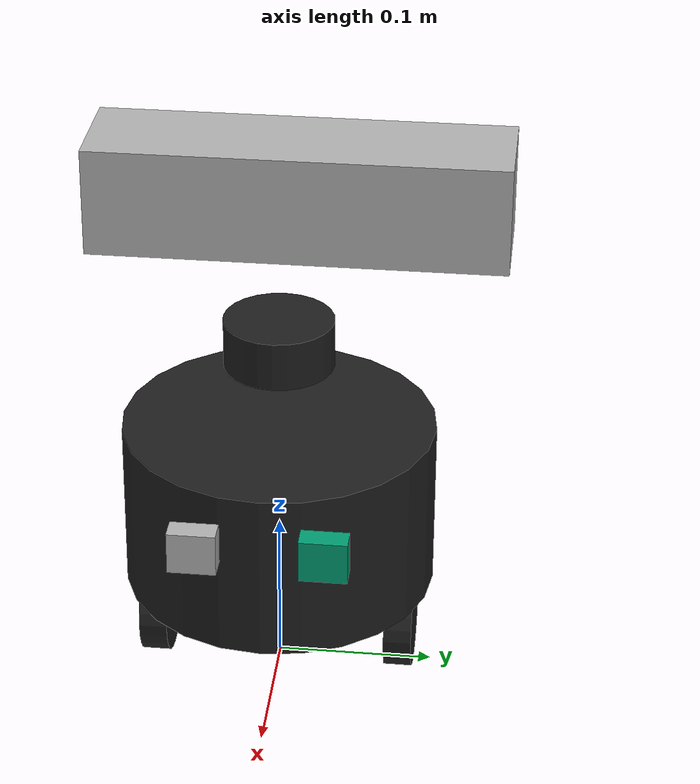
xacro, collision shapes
<?xml version="1.0" ?>
<robot name="robot_thesis" xmlns:xacro="http://ros.org/wiki/xacro">
  <xacro:include filename="$(find robot_description)/urdf/common_properties.xacro"/>
  <xacro:include filename="$(find robot_description)/urdf/robot_thesis.gazebo.xacro"/>

  <xacro:property name="r200_cam_rgb_px" value="0.005"/>
  <xacro:property name="r200_cam_rgb_py" value="0.018"/>
  <xacro:property name="r200_cam_rgb_pz" value="0.013"/>
  <xacro:property name="r200_cam_depth_offset" value="0.01"/>
  <xacro:property name="parent" value="base_link"/>
  <xacro:property name="M_PI" value="3.14"/>
  <xacro:property name="kinect_cam_py" value="-0.0125"/>
  <xacro:property name="cam_px" value="-0.087" />
  <xacro:property name="cam_pz" value="0.2870" />
  <xacro:property name="cam_or" value="0" />
  <xacro:property name="cam_op" value="0" />
  <xacro:property name="cam_oy" value="0" />

  <link name="base_footprint"/>

  <joint name="base_joint" type="fixed">
    <parent link="base_footprint"/>
    <child link="base_link"/>
    <origin xyz="0.0 0.0 0.010" rpy="0 0 0"/>
  </joint>

  <link name="base_link">
    <visual>
      <origin xyz="-0.0 0 0.0525" rpy="0 0 -1.5707"/>
      <geometry>
        <mesh filename="package://robot_description/meshes/stl/robot_base.stl" scale="0.001 0.001 0.001"/>
      </geometry>
      <material name="light_black"/>
    </visual>

    <collision>
      <origin xyz="-0.0 0 0.11" rpy="0 0 0"/>
      <geometry>
        <cylinder length="0.11" radius="0.1"/>
      </geometry>
    </collision>

    <inertial>
      <origin xyz="0 0 0" rpy="0 0 0"/>
      <mass value="8.2573504e-01"/>
      <inertia ixx="2.2124416e-03" ixy="-1.2294101e-05" ixz="3.4938785e-05"
               iyy="2.1193702e-03" iyz="-5.0120904e-06"
               izz="2.0064271e-03" />
    </inertial>
  </link>

  <joint name="wheel_left_joint" type="continuous">
    <parent link="base_link"/>
    <child link="wheel_left_link"/>
    <origin xyz="0.0 0.08 0.023" rpy="-1.57 0 0"/>
    <axis xyz="0 0 1"/>
  </joint>

  <link name="wheel_left_link">
    <visual>
      <origin xyz="0 0 0" rpy="-1.57 0  3.14"/>
      <geometry>
        <mesh filename="package://robot_description/meshes/stl/robot_wheel.stl" scale="0.001 0.001 0.001"/>
      </geometry>
      <material name="dark"/>
    </visual>

    <collision>
      <origin xyz="0 0 0" rpy="0 0 0"/>
      <geometry>
        <cylinder length="0.018" radius="0.033"/>
      </geometry>
    </collision>

    <inertial>
      <origin xyz="0 0 0" />
      <mass value="2.8498940e-02" />
      <inertia ixx="1.1175580e-05" ixy="-4.2369783e-11" ixz="-5.9381719e-09"
               iyy="1.1192413e-05" iyz="-1.4400107e-11"
               izz="2.0712558e-05" />
      </inertial>
  </link>

  <joint name="wheel_right_joint" type="continuous">
    <parent link="base_link"/>
    <child link="wheel_right_link"/>
    <origin xyz="0.0 -0.080 0.023" rpy="-1.57 0 0"/>
    <axis xyz="0 0 1"/>
  </joint>

  <link name="wheel_right_link">
    <visual>
      <origin xyz="0 0 0" rpy="1.57 0 0"/>
      <geometry>
        <mesh filename="package://robot_description/meshes/stl/robot_wheel.stl" scale="0.001 0.001 0.001"/>
      </geometry>
      <material name="dark"/>
    </visual>

    <collision>
      <origin xyz="0 0 0" rpy="0 0 0"/>
      <geometry>
        <cylinder length="0.018" radius="0.033"/>
      </geometry>
    </collision>

    <inertial>
      <origin xyz="0 0 0" />
      <mass value="2.8498940e-02" />
      <inertia ixx="1.1175580e-05" ixy="-4.2369783e-11" ixz="-5.9381719e-09"
               iyy="1.1192413e-05" iyz="-1.4400107e-11"
               izz="2.0712558e-05" />
      </inertial>
  </link>

  <joint name="caster_back_joint" type="fixed">
    <parent link="base_link"/>
    <child link="caster_back_link"/>
    <origin xyz="-0.081 0 -0.004" rpy="-1.57 0 0"/>
  </joint>

  <link name="caster_back_link">
    <collision>
      <origin xyz="0 0.001 0" rpy="0 0 0"/>
      <geometry>
        <box size="0.030 0.009 0.020"/>
      </geometry>
    </collision>

    <inertial>
      <origin xyz="0 0 0" />
      <mass value="0.005" />
      <inertia ixx="0.001" ixy="0.0" ixz="0.0"
               iyy="0.001" iyz="0.0"
               izz="0.001" />
    </inertial>
  </link>

  <joint name="imu_joint" type="fixed">
    <parent link="base_link"/>
    <child link="imu_link"/>
    <origin xyz="-0.032 0 0.068" rpy="0 0 0"/>
  </joint>

  <link name="imu_link"/>

  <joint name="scan_joint" type="fixed">
    <parent link="base_link"/>
    <child link="base_scan"/>
    <origin xyz="0.0 0 0.172" rpy="0 0 0"/>
  </joint>

  <link name="base_scan">

    <collision>
      <origin xyz="0.0 0 0.05" rpy="0 0 0"/>
      <geometry>
        <cylinder length="0.0315" radius="0.035"/>
      </geometry>
    </collision>

    <inertial>
      <mass value="0.114" />
      <origin xyz="0 0 0" />
      <inertia ixx="0.001" ixy="0.0" ixz="0.0"
               iyy="0.001" iyz="0.0"
               izz="0.001" />
    </inertial>
  </link>

  <joint name="camera_left_joint" type="fixed">
    <origin xyz="0.1 -0.02 0.12" rpy="0 0 0"/>
    <parent link="base_link"/>
    <child link="camera_left_link"/>
  </joint>

  <link name="camera_left_link">
    <collision>
      <origin xyz="0.005 -0.02 0.013" rpy="0 0 0"/>
      <geometry>
        <box size="0.015 0.030 0.027"/>
      </geometry>
    </collision>
  </link>

  <joint name="camera_left_rgb_joint" type="fixed">
    <origin xyz="0.003 0.02 0.009" rpy="0 0 0"/>
    <parent link="camera_left_link"/>
    <child link="camera_left_rgb_frame"/>
  </joint>
  <link name="camera_left_rgb_frame"/>

  <joint name="camera_left_rgb_optical_joint" type="fixed">
    <origin xyz="0 0 0" rpy="-1.57 0 -1.57"/>
    <parent link="camera_left_rgb_frame"/>
    <child link="camera_left_rgb_optical_frame"/>
  </joint>
  <link name="camera_left_rgb_optical_frame"/>

    <joint name="camera_right_joint" type="fixed">
    <origin xyz="0.1 0.02 0.12" rpy="0 0 0"/>
    <parent link="base_link"/>
    <child link="camera_right_link"/>
  </joint>

  <link name="camera_right_link">
    <collision>
      <origin xyz="0.005 0.02 0.013" rpy="0 0 0"/>
      <geometry>
        <box size="0.015 0.030 0.027"/>
      </geometry>
    </collision>
  </link>

    <joint name="camera_right_rgb_joint" type="fixed">
    <origin xyz="0.003 0.02 0.009" rpy="0 0 0"/>
    <parent link="camera_right_link"/>
    <child link="camera_right_rgb_frame"/>
  </joint>
  <link name="camera_right_rgb_frame"/>

  <joint name="camera_right_rgb_optical_joint" type="fixed">
    <origin xyz="0 0 0" rpy="-1.57 0 -1.57"/>
    <parent link="camera_right_rgb_frame"/>
    <child link="camera_right_rgb_optical_frame"/>
  </joint>
  <link name="camera_right_rgb_optical_frame"/>

    <joint name="camera_rgb_joint" type="fixed">
      <origin xyz="${cam_px} ${kinect_cam_py} ${cam_pz}" rpy="${cam_or} ${cam_op} ${cam_oy}"/>
      <parent link="${parent}"/>
      <child link="camera_rgb_frame" />
    </joint>
    <link name="camera_rgb_frame"/>

    <joint name="camera_rgb_optical_joint" type="fixed">
      <origin xyz="0 0 0" rpy="${-M_PI/2} 0 ${-M_PI/2}" />
      <parent link="camera_rgb_frame" />
      <child link="camera_rgb_optical_frame" />
    </joint>
    <link name="camera_rgb_optical_frame"/>

    <joint name="camera_joint" type="fixed">
      <origin xyz="-0.031 ${-kinect_cam_py} -0.016" rpy="0 0 0"/>
      <parent link="camera_rgb_frame"/>
      <child link="camera_link"/>
    </joint>
      <link name="camera_link">
      <collision>
        <origin xyz="0.0 0.0 0.0" rpy="0 0 0"/>
        <geometry>
          <box size="0.07271 0.27794 0.073"/>
        </geometry>
      </collision>
    </link>

  <joint name="camera_depth_joint" type="fixed">
    <origin xyz="0 ${2 * -kinect_cam_py} 0" rpy="0 0 0" />
    <parent link="camera_rgb_frame" />
    <child link="camera_depth_frame" />
  </joint>
  <link name="camera_depth_frame"/>

  <joint name="camera_depth_optical_joint" type="fixed">
    <origin xyz="0 0 0" rpy="${-M_PI/2} 0 ${-M_PI/2}" />
    <parent link="camera_depth_frame" />
    <child link="camera_depth_optical_frame" />
  </joint>
  <link name="camera_depth_optical_frame"/>

</robot>
